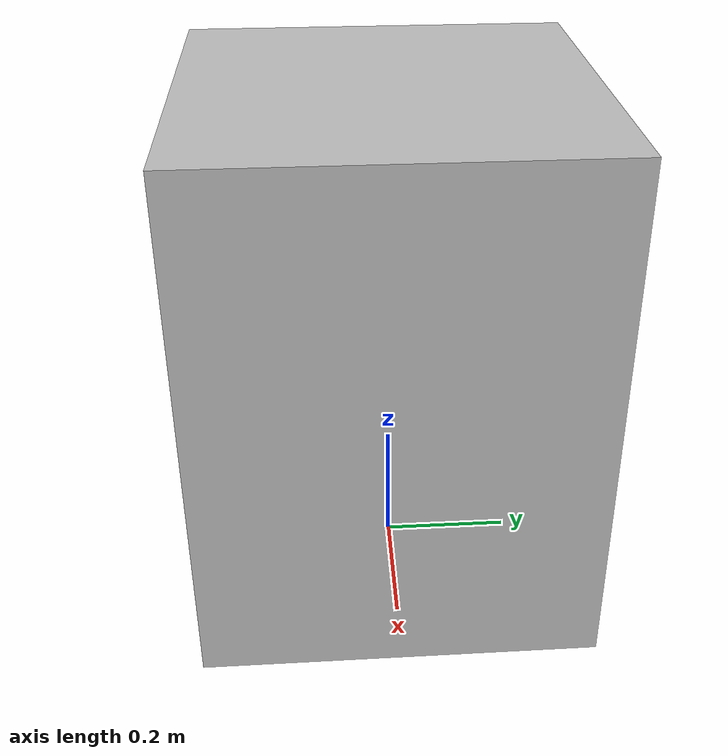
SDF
<?xml version="1.0" ?>
<sdf version="1.6">
  <model name="rwc2022/dishwasher">
    <static>true</static>
    <link name="1_link">
      <collision name="1_col">
        <geometry>
          <box>
            <size>0.6 0.6 0.8</size>
          </box>
        </geometry>
      </collision>
      <visual name="1_vis">
        <geometry>
          <box>
            <size>0.6 0.6 0.8</size>
          </box>
        </geometry>
      </visual>
      <pose>0.0 0.0 0.4 0 0 0</pose>
    </link>
    <link name="on_top_of">
      <virtual_volume name="on_top_of_vv">
        <geometry>
          <box>
            <size>0.58 0.54 0.25</size>
          </box>
        </geometry>
        <pose>0.0 0.0 0.945 0 0 0</pose>
      </virtual_volume>
    </link>
    <link name="in_front_of">
      <virtual_volume name="in_front_of_vv">
        <geometry>
          <box>
            <size>0.2 0.4 0.01</size>
          </box>
        </geometry>
        <pose>0.8 0.0 0.005 0 0 0</pose>
      </virtual_volume>
    </link>
  </model>
</sdf>
